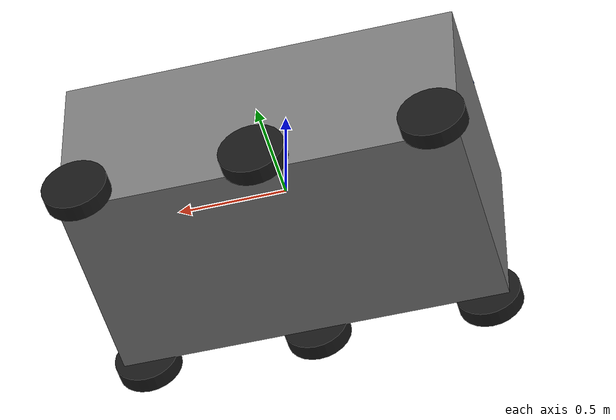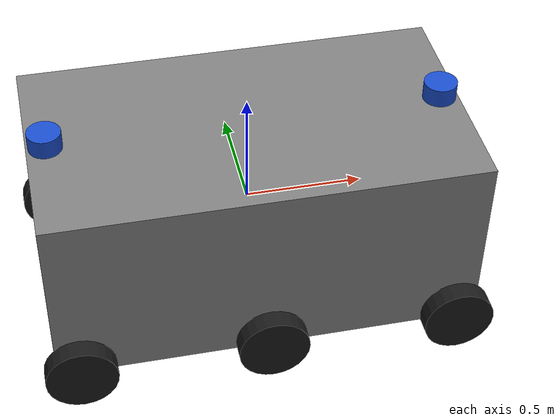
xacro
<?xml version="1.0"?>
<robot name="six_wheel_ugv">

  <link name="base_footprint" />
  <link name="base_link">
    <visual>
      <geometry>
        <box size="1.8 1.0 0.8"/>
      </geometry>
      <material name="ChassisColor">
        <color rgba="0.5 0.5 0.5 1"/>
      </material>
    </visual>
    <collision>
      <geometry>
        <box size="1.8 1.0 0.8"/>
      </geometry>
    </collision>
    <inertial>
      <mass value="120"/>
      <origin xyz="0 0 0"/>
      <inertia ixx="12" iyy="12" izz="20" ixy="0" ixz="0" iyz="0"/>
    </inertial>
  </link>

  <link name="wheel_left_0">
    <visual>
      <geometry>
        <cylinder radius="0.15" length="0.08"/>
      </geometry>
      <origin xyz="0 0 0" rpy="0 1.5708 0"/>
      <material name="Black">
        <color rgba="0.1 0.1 0.1 1"/>
      </material>
    </visual>
    <collision>
      <geometry>
        <cylinder radius="0.15" length="0.08"/>
      </geometry>
      <origin xyz="0 0 0" rpy="0 1.5708 0"/>
    </collision>
    <inertial>
      <mass value="5"/>
      <origin xyz="0 0 0"/>
      <inertia ixx="0.1" iyy="0.1" izz="0.2" ixy="0" ixz="0" iyz="0"/>
    </inertial>
  </link>

  <link name="wheel_left_1">
    <visual>
      <geometry>
        <cylinder radius="0.15" length="0.08"/>
      </geometry>
      <origin xyz="0 0 0" rpy="0 1.5708 0"/>
      <material name="Black"/>
    </visual>
    <collision>
      <geometry>
        <cylinder radius="0.15" length="0.08"/>
      </geometry>
      <origin xyz="0 0 0" rpy="0 1.5708 0"/>
    </collision>
    <inertial>
      <mass value="5"/>
      <origin xyz="0 0 0"/>
      <inertia ixx="0.1" iyy="0.1" izz="0.2" ixy="0" ixz="0" iyz="0"/>
    </inertial>
  </link>

  <link name="wheel_left_2">
    <visual>
      <geometry>
        <cylinder radius="0.15" length="0.08"/>
      </geometry>
      <origin xyz="0 0 0" rpy="0 1.5708 0"/>
      <material name="Black"/>
    </visual>
    <collision>
      <geometry>
        <cylinder radius="0.15" length="0.08"/>
      </geometry>
      <origin xyz="0 0 0" rpy="0 1.5708 0"/>
    </collision>
    <inertial>
      <mass value="5"/>
      <origin xyz="0 0 0"/>
      <inertia ixx="0.1" iyy="0.1" izz="0.2" ixy="0" ixz="0" iyz="0"/>
    </inertial>
  </link>

  <link name="wheel_right_0">
    <visual>
      <geometry>
        <cylinder radius="0.15" length="0.08"/>
      </geometry>
      <origin xyz="0 0 0" rpy="0 1.5708 0"/>
      <material name="Black"/>
    </visual>
    <collision>
      <geometry>
        <cylinder radius="0.15" length="0.08"/>
      </geometry>
      <origin xyz="0 0 0" rpy="0 1.5708 0"/>
    </collision>
    <inertial>
      <mass value="5"/>
      <origin xyz="0 0 0"/>
      <inertia ixx="0.1" iyy="0.1" izz="0.2" ixy="0" ixz="0" iyz="0"/>
    </inertial>
  </link>

  <link name="wheel_right_1">
    <visual>
      <geometry>
        <cylinder radius="0.15" length="0.08"/>
      </geometry>
      <origin xyz="0 0 0" rpy="0 1.5708 0"/>
      <material name="Black"/>
    </visual>
    <collision>
      <geometry>
        <cylinder radius="0.15" length="0.08"/>
      </geometry>
      <origin xyz="0 0 0" rpy="0 1.5708 0"/>
    </collision>
    <inertial>
      <mass value="5"/>
      <origin xyz="0 0 0"/>
      <inertia ixx="0.1" iyy="0.1" izz="0.2" ixy="0" ixz="0" iyz="0"/>
    </inertial>
  </link>

  <link name="wheel_right_2">
    <visual>
      <geometry>
        <cylinder radius="0.15" length="0.08"/>
      </geometry>
      <origin xyz="0 0 0" rpy="0 1.5708 0"/>
      <material name="Black"/>
    </visual>
    <collision>
      <geometry>
        <cylinder radius="0.15" length="0.08"/>
      </geometry>
      <origin xyz="0 0 0" rpy="0 1.5708 0"/>
    </collision>
    <inertial>
      <mass value="5"/>
      <origin xyz="0 0 0"/>
      <inertia ixx="0.1" iyy="0.1" izz="0.2" ixy="0" ixz="0" iyz="0"/>
    </inertial>
  </link>

  <link name="lidar_front">
    <visual>
      <geometry>
        <cylinder radius="0.07" length="0.08"/>
      </geometry>
      <material name="Blue">
        <color rgba="0.1 0.3 0.8 1"/>
      </material>
    </visual>
  </link>

  <link name="lidar_back">
    <visual>
      <geometry>
        <cylinder radius="0.07" length="0.08"/>
      </geometry>
      <material name="Blue">
        <color rgba="0.1 0.3 0.8 1"/>
      </material>
    </visual>
  </link>

  <joint name="base_joint" type="fixed">
    <parent link="base_footprint"/>
    <child link="base_link"/>
    <origin xyz="0 0 0" rpy="0 0 0"/>
    <axis xyz="0 0 0"/>
  </joint>
  <joint name="joint_wheel_left_0" type="continuous">
    <parent link="base_link"/>
    <child link="wheel_left_0"/>
    <origin xyz="-0.8 -0.55 -0.35" rpy="0 0 1.57"/>
    <axis xyz="1 0 0"/>
  </joint>

  <joint name="joint_wheel_left_1" type="continuous">
    <parent link="base_link"/>
    <child link="wheel_left_1"/>
    <origin xyz="0 -0.55 -0.35" rpy="0 0 1.57"/>
    <axis xyz="1 0 0"/>
  </joint>

  <joint name="joint_wheel_left_2" type="continuous">
    <parent link="base_link"/>
    <child link="wheel_left_2"/>
    <origin xyz="0.8 -0.55 -0.35" rpy="0 0 1.57"/>
    <axis xyz="1 0 0"/>
  </joint>

  <joint name="joint_wheel_right_0" type="continuous">
    <parent link="base_link"/>
    <child link="wheel_right_0"/>
    <origin xyz="0.8 0.55 -0.35" rpy="0 0 1.57"/>
    <axis xyz="1 0 0"/>
  </joint>

  <joint name="joint_wheel_right_1" type="continuous">
    <parent link="base_link"/>
    <child link="wheel_right_1"/>
    <origin xyz="0 0.55 -0.35" rpy="0 0 1.57"/>
    <axis xyz="1 0 0"/>
  </joint>

  <joint name="joint_wheel_right_2" type="continuous">
    <parent link="base_link"/>
    <child link="wheel_right_2"/>
    <origin xyz="-0.8 0.55 -0.35" rpy="0 0 1.57"/>
    <axis xyz="1 0 0"/>
  </joint>

  <joint name="joint_lidar_front" type="fixed">
    <parent link="base_link"/>
    <child link="lidar_front"/>
    <origin xyz="0.82 0 0.44" rpy="0 0 0"/>
  </joint>

  <joint name="joint_lidar_back" type="fixed">
    <parent link="base_link"/>
    <child link="lidar_back"/>
    <origin xyz="-0.82 0 0.44" rpy="0 0 3.14159"/>
  </joint>

  <!-- Gazebo Plugins -->
  <gazebo reference="lidar_front">
    <sensor type="gpu_ray" name="front_lidar_sensor">
      <update_rate>10</update_rate>
      <ray>
        <scan>
          <horizontal>
            <samples>640</samples>
            <resolution>1</resolution>
            <min_angle>-1.047</min_angle>
            <max_angle>1.047</max_angle>
          </horizontal>
        </scan>
        <range>
          <min>0.1</min>
          <max>30.0</max>
        </range>
      </ray>
      <plugin name="gazebo_ros_gpu_lidar" filename="libgazebo_ros_gpu_lidar.so">
        <topicName>/lidar_front/scan</topicName>
        <frameName>lidar_front</frameName>
      </plugin>
    </sensor>
  </gazebo>

  <gazebo reference="lidar_back">
    <sensor type="gpu_ray" name="rear_lidar_sensor">
      <update_rate>10</update_rate>
      <ray>
        <scan>
          <horizontal>
            <samples>640</samples>
            <resolution>1</resolution>
            <min_angle>-1.047</min_angle>
            <max_angle>1.047</max_angle>
          </horizontal>
        </scan>
        <range>
          <min>0.1</min>
          <max>30.0</max>
        </range>
      </ray>
      <plugin name="gazebo_ros_gpu_lidar" filename="libgazebo_ros_gpu_lidar.so">
        <topicName>/lidar_back/scan</topicName>
        <frameName>lidar_back</frameName>
      </plugin>
    </sensor>
  </gazebo>

  <gazebo reference="camera_front">
    <sensor type="camera" name="front_camera_sensor">
      <camera>
        <horizontal_fov>2.094</horizontal_fov>
        <image>
          <width>640</width>
          <height>480</height>
          <format>R8G8B8</format>
        </image>
        <clip>
          <near>0.1</near>
          <far>50</far>
        </clip>
      </camera>
      <plugin name="gazebo_ros_camera" filename="libgazebo_ros_camera.so">
        <cameraName>front_camera</cameraName>
        <imageTopicName>image_raw</imageTopicName>
        <cameraInfoTopicName>camera_info</cameraInfoTopicName>
        <frameName>camera_front</frameName>
      </plugin>
    </sensor>
  </gazebo>

  <gazebo reference="camera_back">
    <sensor type="camera" name="rear_camera_sensor">
      <camera>
        <horizontal_fov>2.094</horizontal_fov>
        <image>
          <width>640</width>
          <height>480</height>
          <format>R8G8B8</format>
        </image>
        <clip>
          <near>0.1</near>
          <far>50</far>
        </clip>
      </camera>
      <plugin name="gazebo_ros_camera" filename="libgazebo_ros_camera.so">
        <cameraName>rear_camera</cameraName>
        <imageTopicName>image_raw</imageTopicName>
        <cameraInfoTopicName>camera_info</cameraInfoTopicName>
        <frameName>camera_back</frameName>
      </plugin>
    </sensor>
  </gazebo>

</robot>
